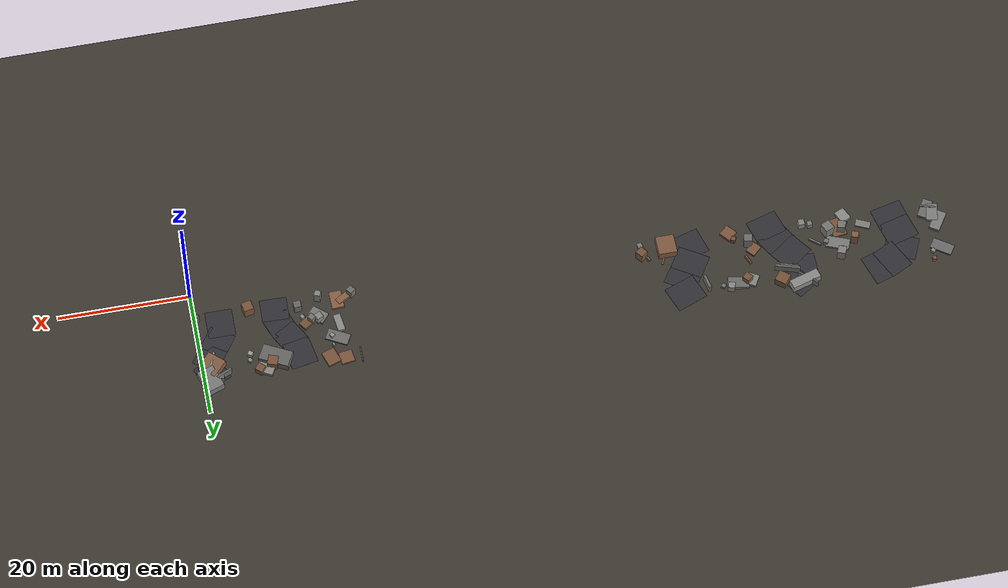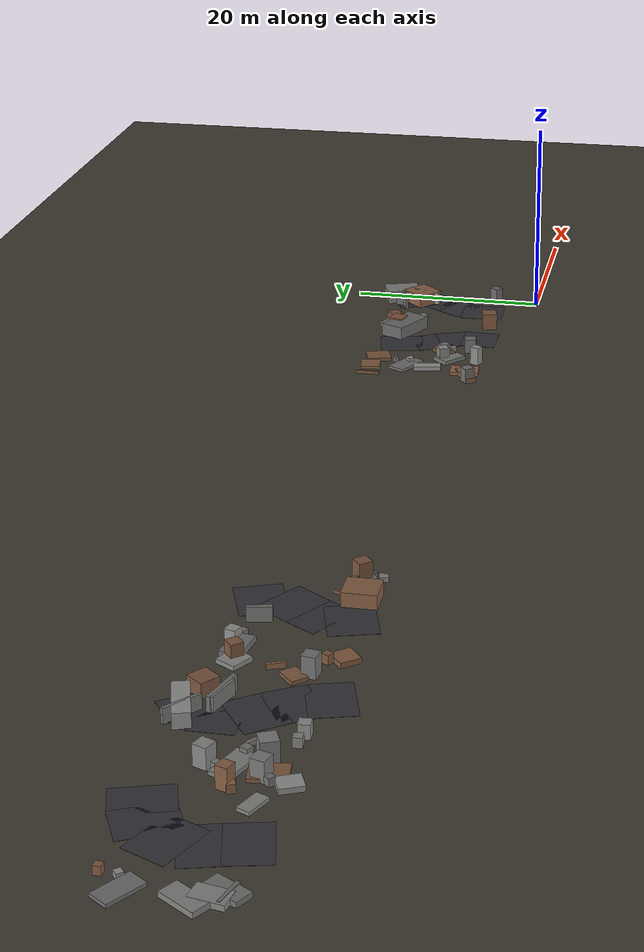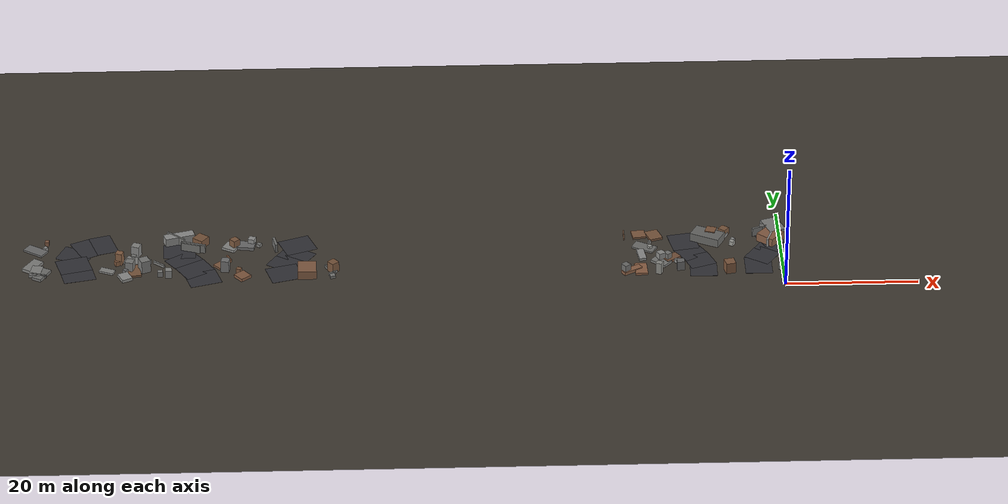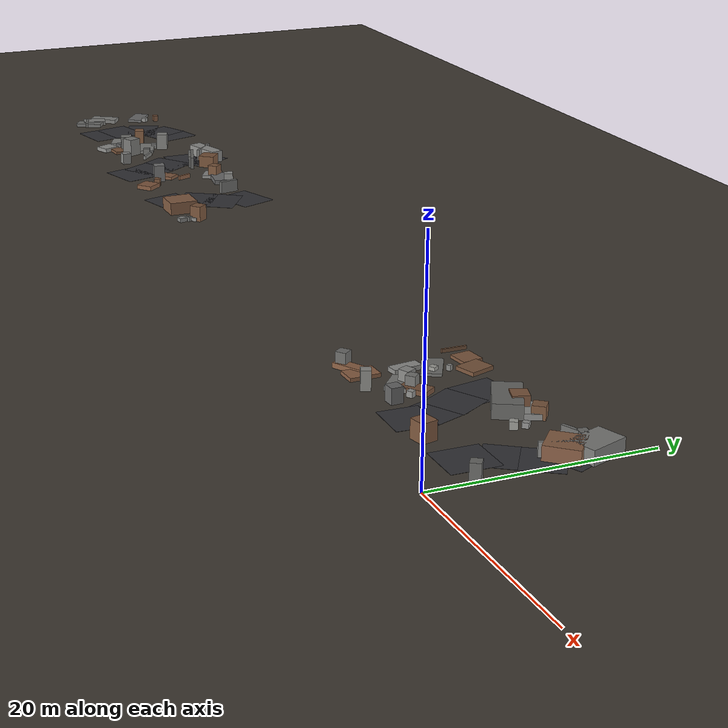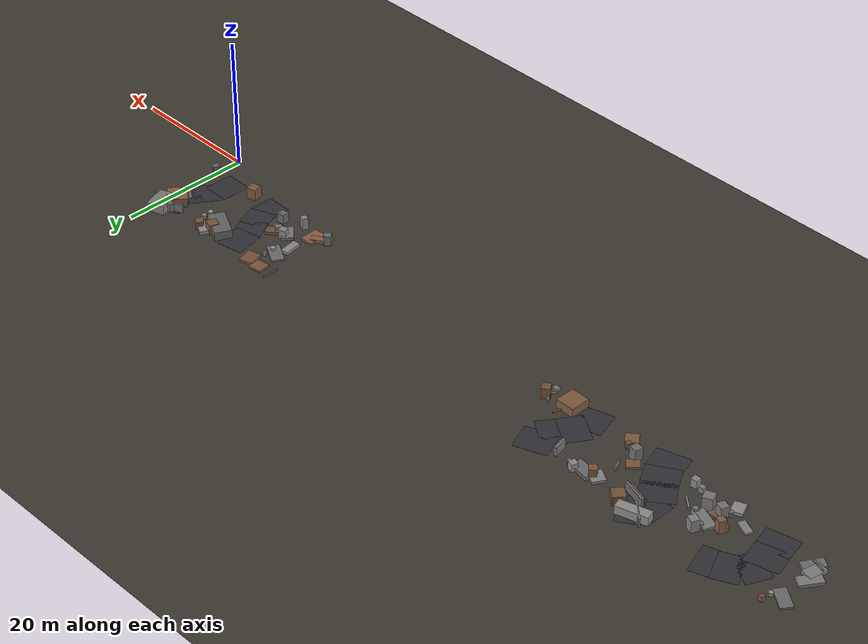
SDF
<sdf version="1.6">
 <world name="navitas_arena">
  <model name="ground_plane">
   <static>true</static>
   <link name="link">
    <collision name="collision">
     <geometry><plane><normal>0 0 1</normal><size>400 400</size></plane></geometry>
     <surface><friction><ode><mu>0.620</mu><mu2>0.620</mu2></ode></friction></surface>
    </collision>
    <visual name="visual">
     <cast_shadows>false</cast_shadows>
     <geometry><plane><normal>0 0 1</normal><size>400 400</size></plane></geometry>
     <material><ambient>0.250 0.230 0.200 1</ambient><diffuse>0.250 0.230 0.200 1</diffuse></material>
    </visual>
   </link>
  </model>
  <model name="road_kolay_1_15">
   <static>true</static>
   <pose>-106.991 6.137 0.040 0 0 1.798</pose>
   <link name="link">
    <collision name="col"><geometry><box><size>3.575 4.920 0.020</size></box></geometry></collision>
    <visual name="vis">
     <geometry><box><size>3.575 4.920 0.020</size></box></geometry>
     <material><ambient>0.20 0.20 0.22 1</ambient><diffuse>0.20 0.20 0.22 1</diffuse></material>
    </visual>
   </link>
  </model>
  <model name="road_kolay_1_16">
   <static>true</static>
   <pose>-107.691 8.910 0.040 0 0 1.836</pose>
   <link name="link">
    <collision name="col"><geometry><box><size>3.946 4.920 0.020</size></box></geometry></collision>
    <visual name="vis">
     <geometry><box><size>3.946 4.920 0.020</size></box></geometry>
     <material><ambient>0.20 0.20 0.22 1</ambient><diffuse>0.20 0.20 0.22 1</diffuse></material>
    </visual>
   </link>
  </model>
  <model name="road_kolay_1_17">
   <static>true</static>
   <pose>-107.504 11.690 0.040 0 0 1.150</pose>
   <link name="link">
    <collision name="col"><geometry><box><size>3.770 4.920 0.020</size></box></geometry></collision>
    <visual name="vis">
     <geometry><box><size>3.770 4.920 0.020</size></box></geometry>
     <material><ambient>0.20 0.20 0.22 1</ambient><diffuse>0.20 0.20 0.22 1</diffuse></material>
    </visual>
   </link>
  </model>
  <model name="road_kolay_1_18">
   <static>true</static>
   <pose>-105.667 13.615 0.040 0 0 0.457</pose>
   <link name="link">
    <collision name="col"><geometry><box><size>3.688 4.920 0.020</size></box></geometry></collision>
    <visual name="vis">
     <geometry><box><size>3.688 4.920 0.020</size></box></geometry>
     <material><ambient>0.20 0.20 0.22 1</ambient><diffuse>0.20 0.20 0.22 1</diffuse></material>
    </visual>
   </link>
  </model>
  <model name="road_kolay_1_19">
   <static>true</static>
   <pose>-103.256 14.594 0.040 0 0 0.304</pose>
   <link name="link">
    <collision name="col"><geometry><box><size>3.331 4.920 0.020</size></box></geometry></collision>
    <visual name="vis">
     <geometry><box><size>3.331 4.920 0.020</size></box></geometry>
     <material><ambient>0.20 0.20 0.22 1</ambient><diffuse>0.20 0.20 0.22 1</diffuse></material>
    </visual>
   </link>
  </model>
  <model name="road_kolay_2_10">
   <static>true</static>
   <pose>-88.036 4.600 0.040 0 0 1.866</pose>
   <link name="link">
    <collision name="col"><geometry><box><size>3.826 4.920 0.020</size></box></geometry></collision>
    <visual name="vis">
     <geometry><box><size>3.826 4.920 0.020</size></box></geometry>
     <material><ambient>0.20 0.20 0.22 1</ambient><diffuse>0.20 0.20 0.22 1</diffuse></material>
    </visual>
   </link>
  </model>
  <model name="road_kolay_2_11">
   <static>true</static>
   <pose>-89.189 7.213 0.040 0 0 2.111</pose>
   <link name="link">
    <collision name="col"><geometry><box><size>3.729 4.920 0.020</size></box></geometry></collision>
    <visual name="vis">
     <geometry><box><size>3.729 4.920 0.020</size></box></geometry>
     <material><ambient>0.20 0.20 0.22 1</ambient><diffuse>0.20 0.20 0.22 1</diffuse></material>
    </visual>
   </link>
  </model>
  <model name="road_kolay_2_12">
   <static>true</static>
   <pose>-90.787 9.639 0.040 0 0 2.193</pose>
   <link name="link">
    <collision name="col"><geometry><box><size>3.886 4.920 0.020</size></box></geometry></collision>
    <visual name="vis">
     <geometry><box><size>3.886 4.920 0.020</size></box></geometry>
     <material><ambient>0.20 0.20 0.22 1</ambient><diffuse>0.20 0.20 0.22 1</diffuse></material>
    </visual>
   </link>
  </model>
  <model name="road_kolay_2_13">
   <static>true</static>
   <pose>-91.660 12.317 0.040 0 0 1.573</pose>
   <link name="link">
    <collision name="col"><geometry><box><size>3.831 4.920 0.020</size></box></geometry></collision>
    <visual name="vis">
     <geometry><box><size>3.831 4.920 0.020</size></box></geometry>
     <material><ambient>0.20 0.20 0.22 1</ambient><diffuse>0.20 0.20 0.22 1</diffuse></material>
    </visual>
   </link>
  </model>
  <model name="road_kolay_2_14">
   <static>true</static>
   <pose>-90.635 14.469 0.040 0 0 0.589</pose>
   <link name="link">
    <collision name="col"><geometry><box><size>3.372 4.920 0.020</size></box></geometry></collision>
    <visual name="vis">
     <geometry><box><size>3.372 4.920 0.020</size></box></geometry>
     <material><ambient>0.20 0.20 0.22 1</ambient><diffuse>0.20 0.20 0.22 1</diffuse></material>
    </visual>
   </link>
  </model>
  <model name="road_kolay_3_12">
   <static>true</static>
   <pose>-75.717 5.598 0.040 0 0 1.853</pose>
   <link name="link">
    <collision name="col"><geometry><box><size>4.227 4.920 0.020</size></box></geometry></collision>
    <visual name="vis">
     <geometry><box><size>4.227 4.920 0.020</size></box></geometry>
     <material><ambient>0.20 0.20 0.22 1</ambient><diffuse>0.20 0.20 0.22 1</diffuse></material>
    </visual>
   </link>
  </model>
  <model name="road_kolay_3_13">
   <static>true</static>
   <pose>-75.413 8.426 0.040 0 0 1.013</pose>
   <link name="link">
    <collision name="col"><geometry><box><size>3.800 4.920 0.020</size></box></geometry></collision>
    <visual name="vis">
     <geometry><box><size>3.800 4.920 0.020</size></box></geometry>
     <material><ambient>0.20 0.20 0.22 1</ambient><diffuse>0.20 0.20 0.22 1</diffuse></material>
    </visual>
   </link>
  </model>
  <model name="road_kolay_3_14">
   <static>true</static>
   <pose>-73.864 10.817 0.040 0 0 0.979</pose>
   <link name="link">
    <collision name="col"><geometry><box><size>3.698 4.920 0.020</size></box></geometry></collision>
    <visual name="vis">
     <geometry><box><size>3.698 4.920 0.020</size></box></geometry>
     <material><ambient>0.20 0.20 0.22 1</ambient><diffuse>0.20 0.20 0.22 1</diffuse></material>
    </visual>
   </link>
  </model>
  <model name="road_kolay_3_15">
   <static>true</static>
   <pose>-73.666 13.503 0.040 0 0 1.936</pose>
   <link name="link">
    <collision name="col"><geometry><box><size>4.165 4.920 0.020</size></box></geometry></collision>
    <visual name="vis">
     <geometry><box><size>4.165 4.920 0.020</size></box></geometry>
     <material><ambient>0.20 0.20 0.22 1</ambient><diffuse>0.20 0.20 0.22 1</diffuse></material>
    </visual>
   </link>
  </model>
  <model name="blk_kolay_1_1_2">
   <static>true</static>
   <pose>-92.213 14.915 0.675 0 0 2.424</pose>
   <link name="link">
    <collision name="col"><geometry><box><size>3.410 0.265 1.350</size></box></geometry></collision>
    <visual name="vis">
     <geometry><box><size>3.410 0.265 1.350</size></box></geometry>
     <material><ambient>0.46 0.46 0.45 1</ambient><diffuse>0.46 0.46 0.45 1</diffuse></material>
    </visual>
   </link>
  </model>
  <model name="blk_kolay_1_1_6">
   <static>true</static>
   <pose>-91.713 15.094 0.675 0 0 0.289</pose>
   <link name="link">
    <collision name="col"><geometry><box><size>4.621 1.448 1.350</size></box></geometry></collision>
    <visual name="vis">
     <geometry><box><size>4.621 1.448 1.350</size></box></geometry>
     <material><ambient>0.56 0.56 0.55 1</ambient><diffuse>0.56 0.56 0.55 1</diffuse></material>
    </visual>
   </link>
  </model>
  <model name="blk_kolay_2_1_0">
   <static>true</static>
   <pose>-88.427 14.271 0.675 0 0 2.476</pose>
   <link name="link">
    <collision name="col"><geometry><box><size>1.804 1.804 1.350</size></box></geometry></collision>
    <visual name="vis">
     <geometry><box><size>1.804 1.804 1.350</size></box></geometry>
     <material><ambient>0.47 0.33 0.23 1</ambient><diffuse>0.47 0.33 0.23 1</diffuse></material>
    </visual>
   </link>
  </model>
  <model name="blk_kolay_2_1_1">
   <static>true</static>
   <pose>-89.940 12.392 0.675 0 0 2.824</pose>
   <link name="link">
    <collision name="col"><geometry><box><size>2.982 0.255 1.350</size></box></geometry></collision>
    <visual name="vis">
     <geometry><box><size>2.982 0.255 1.350</size></box></geometry>
     <material><ambient>0.44 0.44 0.43 1</ambient><diffuse>0.44 0.44 0.43 1</diffuse></material>
    </visual>
   </link>
  </model>
  <model name="blk_kolay_2_1_2">
   <static>true</static>
   <pose>-89.566 12.567 0.675 0 0 2.842</pose>
   <link name="link">
    <collision name="col"><geometry><box><size>3.827 0.365 1.350</size></box></geometry></collision>
    <visual name="vis">
     <geometry><box><size>3.827 0.365 1.350</size></box></geometry>
     <material><ambient>0.42 0.42 0.41 1</ambient><diffuse>0.42 0.42 0.41 1</diffuse></material>
    </visual>
   </link>
  </model>
  <model name="deb_kolay_7">
   <static>true</static>
   <pose>-113.314 7.004 0.243 0 0 1.379</pose>
   <link name="link">
    <collision name="col"><geometry><box><size>2.743 1.695 0.486</size></box></geometry></collision>
    <visual name="vis">
     <geometry><box><size>2.743 1.695 0.486</size></box></geometry>
     <material><ambient>0.51 0.51 0.50 1</ambient><diffuse>0.51 0.51 0.50 1</diffuse></material>
    </visual>
   </link>
  </model>
  <model name="deb_kolay_10">
   <static>true</static>
   <pose>-113.546 13.059 0.151 0 0 2.538</pose>
   <link name="link">
    <collision name="col"><geometry><box><size>3.365 1.752 0.302</size></box></geometry></collision>
    <visual name="vis">
     <geometry><box><size>3.365 1.752 0.302</size></box></geometry>
     <material><ambient>0.43 0.43 0.43 1</ambient><diffuse>0.43 0.43 0.43 1</diffuse></material>
    </visual>
   </link>
  </model>
  <model name="deb_kolay_14">
   <static>true</static>
   <pose>-113.951 8.148 0.214 0 0 0.482</pose>
   <link name="link">
    <collision name="col"><geometry><box><size>2.091 0.282 0.429</size></box></geometry></collision>
    <visual name="vis">
     <geometry><box><size>2.091 0.282 0.429</size></box></geometry>
     <material><ambient>0.53 0.53 0.52 1</ambient><diffuse>0.53 0.53 0.52 1</diffuse></material>
    </visual>
   </link>
  </model>
  <model name="deb_kolay_17">
   <static>true</static>
   <pose>-98.615 6.792 0.160 0 0 1.695</pose>
   <link name="link">
    <collision name="col"><geometry><box><size>3.017 2.163 0.320</size></box></geometry></collision>
    <visual name="vis">
     <geometry><box><size>3.017 2.163 0.320</size></box></geometry>
     <material><ambient>0.48 0.34 0.24 1</ambient><diffuse>0.48 0.34 0.24 1</diffuse></material>
    </visual>
   </link>
  </model>
  <model name="deb_kolay_18">
   <static>true</static>
   <pose>-82.577 6.045 0.425 0 0 2.654</pose>
   <link name="link">
    <collision name="col"><geometry><box><size>0.692 0.692 0.850</size></box></geometry></collision>
    <visual name="vis">
     <geometry><box><size>0.692 0.692 0.850</size></box></geometry>
     <material><ambient>0.47 0.33 0.23 1</ambient><diffuse>0.47 0.33 0.23 1</diffuse></material>
    </visual>
   </link>
  </model>
  <model name="deb_kolay_25">
   <static>true</static>
   <pose>-84.642 6.884 0.941 0 0 2.954</pose>
   <link name="link">
    <collision name="col"><geometry><box><size>1.219 1.219 1.882</size></box></geometry></collision>
    <visual name="vis">
     <geometry><box><size>1.219 1.219 1.882</size></box></geometry>
     <material><ambient>0.44 0.44 0.44 1</ambient><diffuse>0.44 0.44 0.44 1</diffuse></material>
    </visual>
   </link>
  </model>
  <model name="deb_kolay_26">
   <static>true</static>
   <pose>-102.561 6.957 0.153 0 0 2.722</pose>
   <link name="link">
    <collision name="col"><geometry><box><size>2.279 1.136 0.305</size></box></geometry></collision>
    <visual name="vis">
     <geometry><box><size>2.279 1.136 0.305</size></box></geometry>
     <material><ambient>0.51 0.51 0.50 1</ambient><diffuse>0.51 0.51 0.50 1</diffuse></material>
    </visual>
   </link>
  </model>
  <model name="deb_kolay_37">
   <static>true</static>
   <pose>-99.840 5.010 0.238 0 0 1.985</pose>
   <link name="link">
    <collision name="col"><geometry><box><size>1.971 1.662 0.475</size></box></geometry></collision>
    <visual name="vis">
     <geometry><box><size>1.971 1.662 0.475</size></box></geometry>
     <material><ambient>0.56 0.56 0.55 1</ambient><diffuse>0.56 0.56 0.55 1</diffuse></material>
    </visual>
   </link>
  </model>
  <model name="deb_kolay_38">
   <static>true</static>
   <pose>-113.891 8.563 0.242 0 0 0.990</pose>
   <link name="link">
    <collision name="col"><geometry><box><size>3.297 1.637 0.485</size></box></geometry></collision>
    <visual name="vis">
     <geometry><box><size>3.297 1.637 0.485</size></box></geometry>
     <material><ambient>0.50 0.50 0.49 1</ambient><diffuse>0.50 0.50 0.49 1</diffuse></material>
    </visual>
   </link>
  </model>
  <model name="deb_kolay_40">
   <static>true</static>
   <pose>-79.509 13.519 0.254 0 0 0.929</pose>
   <link name="link">
    <collision name="col"><geometry><box><size>0.619 0.619 0.508</size></box></geometry></collision>
    <visual name="vis">
     <geometry><box><size>0.619 0.619 0.508</size></box></geometry>
     <material><ambient>0.46 0.46 0.45 1</ambient><diffuse>0.46 0.46 0.45 1</diffuse></material>
    </visual>
   </link>
  </model>
  <model name="deb_kolay_41">
   <static>true</static>
   <pose>-80.600 14.034 0.599 0 0 1.234</pose>
   <link name="link">
    <collision name="col"><geometry><box><size>0.995 0.995 1.199</size></box></geometry></collision>
    <visual name="vis">
     <geometry><box><size>0.995 0.995 1.199</size></box></geometry>
     <material><ambient>0.56 0.56 0.55 1</ambient><diffuse>0.56 0.56 0.55 1</diffuse></material>
    </visual>
   </link>
  </model>
  <model name="deb_kolay_44">
   <static>true</static>
   <pose>-98.101 9.477 0.182 0 0 2.768</pose>
   <link name="link">
    <collision name="col"><geometry><box><size>3.544 1.843 0.364</size></box></geometry></collision>
    <visual name="vis">
     <geometry><box><size>3.544 1.843 0.364</size></box></geometry>
     <material><ambient>0.49 0.49 0.48 1</ambient><diffuse>0.49 0.49 0.48 1</diffuse></material>
    </visual>
   </link>
  </model>
  <model name="deb_kolay_45">
   <static>true</static>
   <pose>-112.463 6.183 0.221 0 0 1.046</pose>
   <link name="link">
    <collision name="col"><geometry><box><size>3.140 1.532 0.443</size></box></geometry></collision>
    <visual name="vis">
     <geometry><box><size>3.140 1.532 0.443</size></box></geometry>
     <material><ambient>0.44 0.44 0.43 1</ambient><diffuse>0.44 0.44 0.43 1</diffuse></material>
    </visual>
   </link>
  </model>
  <model name="deb_kolay_46">
   <static>true</static>
   <pose>-68.763 6.038 0.263 0 0 2.156</pose>
   <link name="link">
    <collision name="col"><geometry><box><size>2.590 0.268 0.525</size></box></geometry></collision>
    <visual name="vis">
     <geometry><box><size>2.590 0.268 0.525</size></box></geometry>
     <material><ambient>0.42 0.42 0.41 1</ambient><diffuse>0.42 0.42 0.41 1</diffuse></material>
    </visual>
   </link>
  </model>
  <model name="deb_kolay_66">
   <static>true</static>
   <pose>-71.697 6.891 0.123 0 0 1.167</pose>
   <link name="link">
    <collision name="col"><geometry><box><size>2.437 0.231 0.245</size></box></geometry></collision>
    <visual name="vis">
     <geometry><box><size>2.437 0.231 0.245</size></box></geometry>
     <material><ambient>0.50 0.35 0.25 1</ambient><diffuse>0.50 0.35 0.25 1</diffuse></material>
    </visual>
   </link>
  </model>
  <model name="deb_kolay_67">
   <static>true</static>
   <pose>-99.098 7.193 0.897 0 0 2.839</pose>
   <link name="link">
    <collision name="col"><geometry><box><size>1.222 1.222 1.793</size></box></geometry></collision>
    <visual name="vis">
     <geometry><box><size>1.222 1.222 1.793</size></box></geometry>
     <material><ambient>0.47 0.47 0.46 1</ambient><diffuse>0.47 0.47 0.46 1</diffuse></material>
    </visual>
   </link>
  </model>
  <model name="deb_kolay_73">
   <static>true</static>
   <pose>-93.256 5.413 0.629 0 0 0.041</pose>
   <link name="link">
    <collision name="col"><geometry><box><size>0.967 0.967 1.257</size></box></geometry></collision>
    <visual name="vis">
     <geometry><box><size>0.967 0.967 1.257</size></box></geometry>
     <material><ambient>0.53 0.53 0.52 1</ambient><diffuse>0.53 0.53 0.52 1</diffuse></material>
    </visual>
   </link>
  </model>
  <model name="deb_kolay_77">
   <static>true</static>
   <pose>-94.723 8.597 0.214 0 0 2.456</pose>
   <link name="link">
    <collision name="col"><geometry><box><size>2.092 0.277 0.428</size></box></geometry></collision>
    <visual name="vis">
     <geometry><box><size>2.092 0.277 0.428</size></box></geometry>
     <material><ambient>0.48 0.48 0.47 1</ambient><diffuse>0.48 0.48 0.47 1</diffuse></material>
    </visual>
   </link>
  </model>
  <model name="deb_kolay_78">
   <static>true</static>
   <pose>-85.300 8.099 0.170 0 0 0.738</pose>
   <link name="link">
    <collision name="col"><geometry><box><size>1.910 1.496 0.341</size></box></geometry></collision>
    <visual name="vis">
     <geometry><box><size>1.910 1.496 0.341</size></box></geometry>
     <material><ambient>0.50 0.35 0.25 1</ambient><diffuse>0.50 0.35 0.25 1</diffuse></material>
    </visual>
   </link>
  </model>
  <model name="deb_kolay_88">
   <static>true</static>
   <pose>-111.864 14.915 0.367 0 0 3.038</pose>
   <link name="link">
    <collision name="col"><geometry><box><size>0.597 0.597 0.733</size></box></geometry></collision>
    <visual name="vis">
     <geometry><box><size>0.597 0.597 0.733</size></box></geometry>
     <material><ambient>0.49 0.34 0.25 1</ambient><diffuse>0.49 0.34 0.25 1</diffuse></material>
    </visual>
   </link>
  </model>
  <model name="deb_kolay_91">
   <static>true</static>
   <pose>-94.531 5.620 0.431 0 0 0.081</pose>
   <link name="link">
    <collision name="col"><geometry><box><size>0.751 0.751 0.863</size></box></geometry></collision>
    <visual name="vis">
     <geometry><box><size>0.751 0.751 0.863</size></box></geometry>
     <material><ambient>0.49 0.49 0.48 1</ambient><diffuse>0.49 0.49 0.48 1</diffuse></material>
    </visual>
   </link>
  </model>
  <model name="deb_kolay_93">
   <static>true</static>
   <pose>-96.911 7.226 1.000 0 0 0.416</pose>
   <link name="link">
    <collision name="col"><geometry><box><size>1.458 1.458 2.001</size></box></geometry></collision>
    <visual name="vis">
     <geometry><box><size>1.458 1.458 2.001</size></box></geometry>
     <material><ambient>0.47 0.47 0.46 1</ambient><diffuse>0.47 0.47 0.46 1</diffuse></material>
    </visual>
   </link>
  </model>
  <model name="deb_kolay_99">
   <static>true</static>
   <pose>-99.795 6.444 0.358 0 0 0.860</pose>
   <link name="link">
    <collision name="col"><geometry><box><size>0.614 0.614 0.716</size></box></geometry></collision>
    <visual name="vis">
     <geometry><box><size>0.614 0.614 0.716</size></box></geometry>
     <material><ambient>0.43 0.43 0.43 1</ambient><diffuse>0.43 0.43 0.43 1</diffuse></material>
    </visual>
   </link>
  </model>
  <model name="deb_kolay_109">
   <static>true</static>
   <pose>-68.354 5.291 0.204 0 0 0.637</pose>
   <link name="link">
    <collision name="col"><geometry><box><size>1.551 0.190 0.407</size></box></geometry></collision>
    <visual name="vis">
     <geometry><box><size>1.551 0.190 0.407</size></box></geometry>
     <material><ambient>0.53 0.53 0.52 1</ambient><diffuse>0.53 0.53 0.52 1</diffuse></material>
    </visual>
   </link>
  </model>
  <model name="deb_kolay_113">
   <static>true</static>
   <pose>-98.566 10.568 0.325 0 0 2.682</pose>
   <link name="link">
    <collision name="col"><geometry><box><size>0.607 0.607 0.650</size></box></geometry></collision>
    <visual name="vis">
     <geometry><box><size>0.607 0.607 0.650</size></box></geometry>
     <material><ambient>0.48 0.48 0.47 1</ambient><diffuse>0.48 0.48 0.47 1</diffuse></material>
    </visual>
   </link>
  </model>
  <model name="deb_kolay_123">
   <static>true</static>
   <pose>-82.059 4.766 0.240 0 0 2.258</pose>
   <link name="link">
    <collision name="col"><geometry><box><size>1.849 1.866 0.480</size></box></geometry></collision>
    <visual name="vis">
     <geometry><box><size>1.849 1.866 0.480</size></box></geometry>
     <material><ambient>0.51 0.35 0.25 1</ambient><diffuse>0.51 0.35 0.25 1</diffuse></material>
    </visual>
   </link>
  </model>
  <model name="deb_kolay_129">
   <static>true</static>
   <pose>-68.448 4.347 0.221 0 0 0.182</pose>
   <link name="link">
    <collision name="col"><geometry><box><size>0.771 0.771 0.442</size></box></geometry></collision>
    <visual name="vis">
     <geometry><box><size>0.771 0.771 0.442</size></box></geometry>
     <material><ambient>0.49 0.49 0.48 1</ambient><diffuse>0.49 0.49 0.48 1</diffuse></material>
    </visual>
   </link>
  </model>
  <model name="deb_kolay_130">
   <static>true</static>
   <pose>-101.071 8.920 0.368 0 0 0.410</pose>
   <link name="link">
    <collision name="col"><geometry><box><size>0.712 0.712 0.736</size></box></geometry></collision>
    <visual name="vis">
     <geometry><box><size>0.712 0.712 0.736</size></box></geometry>
     <material><ambient>0.53 0.37 0.26 1</ambient><diffuse>0.53 0.37 0.26 1</diffuse></material>
    </visual>
   </link>
  </model>
  <model name="deb_kolay_137">
   <static>true</static>
   <pose>-98.194 11.546 0.926 0 0 1.177</pose>
   <link name="link">
    <collision name="col"><geometry><box><size>1.229 1.229 1.853</size></box></geometry></collision>
    <visual name="vis">
     <geometry><box><size>1.229 1.229 1.853</size></box></geometry>
     <material><ambient>0.52 0.52 0.51 1</ambient><diffuse>0.52 0.52 0.51 1</diffuse></material>
    </visual>
   </link>
  </model>
  <model name="deb_kolay_138">
   <static>true</static>
   <pose>-112.042 13.504 0.244 0 0 2.260</pose>
   <link name="link">
    <collision name="col"><geometry><box><size>0.576 0.576 0.488</size></box></geometry></collision>
    <visual name="vis">
     <geometry><box><size>0.576 0.576 0.488</size></box></geometry>
     <material><ambient>0.56 0.56 0.55 1</ambient><diffuse>0.56 0.56 0.55 1</diffuse></material>
    </visual>
   </link>
  </model>
  <model name="deb_kolay_139">
   <static>true</static>
   <pose>-83.240 13.256 0.769 0 0 2.269</pose>
   <link name="link">
    <collision name="col"><geometry><box><size>1.132 1.132 1.539</size></box></geometry></collision>
    <visual name="vis">
     <geometry><box><size>1.132 1.132 1.539</size></box></geometry>
     <material><ambient>0.48 0.34 0.24 1</ambient><diffuse>0.48 0.34 0.24 1</diffuse></material>
    </visual>
   </link>
  </model>
  <model name="deb_kolay_140">
   <static>true</static>
   <pose>-68.319 6.161 0.830 0 0 2.255</pose>
   <link name="link">
    <collision name="col"><geometry><box><size>1.266 1.266 1.659</size></box></geometry></collision>
    <visual name="vis">
     <geometry><box><size>1.266 1.266 1.659</size></box></geometry>
     <material><ambient>0.47 0.33 0.23 1</ambient><diffuse>0.47 0.33 0.23 1</diffuse></material>
    </visual>
   </link>
  </model>
  <model name="deb_kolay_144">
   <static>true</static>
   <pose>-96.370 8.973 0.355 0 0 2.725</pose>
   <link name="link">
    <collision name="col"><geometry><box><size>0.733 0.733 0.709</size></box></geometry></collision>
    <visual name="vis">
     <geometry><box><size>0.733 0.733 0.709</size></box></geometry>
     <material><ambient>0.45 0.45 0.44 1</ambient><diffuse>0.45 0.45 0.44 1</diffuse></material>
    </visual>
   </link>
  </model>
  <model name="deb_kolay_147">
   <static>true</static>
   <pose>-81.794 13.389 0.258 0 0 2.990</pose>
   <link name="link">
    <collision name="col"><geometry><box><size>3.206 1.804 0.516</size></box></geometry></collision>
    <visual name="vis">
     <geometry><box><size>3.206 1.804 0.516</size></box></geometry>
     <material><ambient>0.43 0.43 0.43 1</ambient><diffuse>0.43 0.43 0.43 1</diffuse></material>
    </visual>
   </link>
  </model>
  <model name="deb_kolay_164">
   <static>true</static>
   <pose>-100.697 9.376 0.970 0 0 2.787</pose>
   <link name="link">
    <collision name="col"><geometry><box><size>1.028 1.028 1.940</size></box></geometry></collision>
    <visual name="vis">
     <geometry><box><size>1.028 1.028 1.940</size></box></geometry>
     <material><ambient>0.52 0.37 0.26 1</ambient><diffuse>0.52 0.37 0.26 1</diffuse></material>
    </visual>
   </link>
  </model>
  <model name="deb_kolay_167">
   <static>true</static>
   <pose>-112.937 5.947 0.268 0 0 2.839</pose>
   <link name="link">
    <collision name="col"><geometry><box><size>2.429 0.284 0.536</size></box></geometry></collision>
    <visual name="vis">
     <geometry><box><size>2.429 0.284 0.536</size></box></geometry>
     <material><ambient>0.41 0.41 0.40 1</ambient><diffuse>0.41 0.41 0.40 1</diffuse></material>
    </visual>
   </link>
  </model>
  <model name="deb_kolay_172">
   <static>true</static>
   <pose>-84.110 9.752 0.241 0 0 1.960</pose>
   <link name="link">
    <collision name="col"><geometry><box><size>1.574 0.236 0.482</size></box></geometry></collision>
    <visual name="vis">
     <geometry><box><size>1.574 0.236 0.482</size></box></geometry>
     <material><ambient>0.55 0.38 0.27 1</ambient><diffuse>0.55 0.38 0.27 1</diffuse></material>
    </visual>
   </link>
  </model>
  <model name="deb_kolay_174">
   <static>true</static>
   <pose>-83.801 13.127 0.202 0 0 2.611</pose>
   <link name="link">
    <collision name="col"><geometry><box><size>2.108 1.948 0.403</size></box></geometry></collision>
    <visual name="vis">
     <geometry><box><size>2.108 1.948 0.403</size></box></geometry>
     <material><ambient>0.53 0.53 0.52 1</ambient><diffuse>0.53 0.53 0.52 1</diffuse></material>
    </visual>
   </link>
  </model>
  <model name="chic_kolay_5">
   <static>true</static>
   <pose>-72.289 5.411 0.675 0 0 1.572</pose>
   <link name="link">
    <collision name="col"><geometry><box><size>3.036 2.843 1.350</size></box></geometry></collision>
    <visual name="vis">
     <geometry><box><size>3.036 2.843 1.350</size></box></geometry>
     <material><ambient>0.51 0.36 0.26 1</ambient><diffuse>0.51 0.36 0.26 1</diffuse></material>
    </visual>
   </link>
  </model>
  <model name="chic_kolay_6">
   <static>true</static>
   <pose>-77.095 12.791 0.675 0 0 1.766</pose>
   <link name="link">
    <collision name="col"><geometry><box><size>2.152 0.413 1.350</size></box></geometry></collision>
    <visual name="vis">
     <geometry><box><size>2.152 0.413 1.350</size></box></geometry>
     <material><ambient>0.44 0.44 0.43 1</ambient><diffuse>0.44 0.44 0.43 1</diffuse></material>
    </visual>
   </link>
  </model>
  <model name="road_orta_1_15">
   <static>true</static>
   <pose>-12.158 4.600 0.040 0 0 1.552</pose>
   <link name="link">
    <collision name="col"><geometry><box><size>3.701 4.100 0.020</size></box></geometry></collision>
    <visual name="vis">
     <geometry><box><size>3.701 4.100 0.020</size></box></geometry>
     <material><ambient>0.20 0.20 0.22 1</ambient><diffuse>0.20 0.20 0.22 1</diffuse></material>
    </visual>
   </link>
  </model>
  <model name="road_orta_1_16">
   <static>true</static>
   <pose>-12.593 7.213 0.040 0 0 1.934</pose>
   <link name="link">
    <collision name="col"><geometry><box><size>3.496 4.100 0.020</size></box></geometry></collision>
    <visual name="vis">
     <geometry><box><size>3.496 4.100 0.020</size></box></geometry>
     <material><ambient>0.20 0.20 0.22 1</ambient><diffuse>0.20 0.20 0.22 1</diffuse></material>
    </visual>
   </link>
  </model>
  <model name="road_orta_1_17">
   <static>true</static>
   <pose>-13.761 9.639 0.040 0 0 2.099</pose>
   <link name="link">
    <collision name="col"><geometry><box><size>3.708 4.100 0.020</size></box></geometry></collision>
    <visual name="vis">
     <geometry><box><size>3.708 4.100 0.020</size></box></geometry>
     <material><ambient>0.20 0.20 0.22 1</ambient><diffuse>0.20 0.20 0.22 1</diffuse></material>
    </visual>
   </link>
  </model>
  <model name="road_orta_1_18">
   <static>true</static>
   <pose>-14.793 12.588 0.040 0 0 1.756</pose>
   <link name="link">
    <collision name="col"><geometry><box><size>4.433 4.100 0.020</size></box></geometry></collision>
    <visual name="vis">
     <geometry><box><size>4.433 4.100 0.020</size></box></geometry>
     <material><ambient>0.20 0.20 0.22 1</ambient><diffuse>0.20 0.20 0.22 1</diffuse></material>
    </visual>
   </link>
  </model>
  <model name="road_orta_2_11">
   <static>true</static>
   <pose>-3.770 5.431 0.040 0 0 1.569</pose>
   <link name="link">
    <collision name="col"><geometry><box><size>4.429 4.100 0.020</size></box></geometry></collision>
    <visual name="vis">
     <geometry><box><size>4.429 4.100 0.020</size></box></geometry>
     <material><ambient>0.20 0.20 0.22 1</ambient><diffuse>0.20 0.20 0.22 1</diffuse></material>
    </visual>
   </link>
  </model>
  <model name="road_orta_2_12">
   <static>true</static>
   <pose>-2.936 8.426 0.040 0 0 0.977</pose>
   <link name="link">
    <collision name="col"><geometry><box><size>3.869 4.100 0.020</size></box></geometry></collision>
    <visual name="vis">
     <geometry><box><size>3.869 4.100 0.020</size></box></geometry>
     <material><ambient>0.20 0.20 0.22 1</ambient><diffuse>0.20 0.20 0.22 1</diffuse></material>
    </visual>
   </link>
  </model>
  <model name="road_orta_2_13">
   <static>true</static>
   <pose>-1.358 10.817 0.040 0 0 0.999</pose>
   <link name="link">
    <collision name="col"><geometry><box><size>3.661 4.100 0.020</size></box></geometry></collision>
    <visual name="vis">
     <geometry><box><size>3.661 4.100 0.020</size></box></geometry>
     <material><ambient>0.20 0.20 0.22 1</ambient><diffuse>0.20 0.20 0.22 1</diffuse></material>
    </visual>
   </link>
  </model>
  <model name="road_orta_2_14">
   <static>true</static>
   <pose>-1.305 13.503 0.040 0 0 1.998</pose>
   <link name="link">
    <collision name="col"><geometry><box><size>4.252 4.100 0.020</size></box></geometry></collision>
    <visual name="vis">
     <geometry><box><size>4.252 4.100 0.020</size></box></geometry>
     <material><ambient>0.20 0.20 0.22 1</ambient><diffuse>0.20 0.20 0.22 1</diffuse></material>
    </visual>
   </link>
  </model>
  <model name="blk_orta_2_2_0">
   <static>true</static>
   <pose>-2.533 14.871 0.675 0 0 1.470</pose>
   <link name="link">
    <collision name="col"><geometry><box><size>0.843 0.843 1.350</size></box></geometry></collision>
    <visual name="vis">
     <geometry><box><size>0.843 0.843 1.350</size></box></geometry>
     <material><ambient>0.42 0.42 0.41 1</ambient><diffuse>0.42 0.42 0.41 1</diffuse></material>
    </visual>
   </link>
  </model>
  <model name="blk_orta_2_2_1">
   <static>true</static>
   <pose>-3.020 14.416 0.675 0 0 0.416</pose>
   <link name="link">
    <collision name="col"><geometry><box><size>2.462 0.315 1.350</size></box></geometry></collision>
    <visual name="vis">
     <geometry><box><size>2.462 0.315 1.350</size></box></geometry>
     <material><ambient>0.44 0.44 0.43 1</ambient><diffuse>0.44 0.44 0.43 1</diffuse></material>
    </visual>
   </link>
  </model>
  <model name="blk_orta_2_2_2">
   <static>true</static>
   <pose>-1.520 12.147 0.675 0 0 1.230</pose>
   <link name="link">
    <collision name="col"><geometry><box><size>3.192 0.291 1.350</size></box></geometry></collision>
    <visual name="vis">
     <geometry><box><size>3.192 0.291 1.350</size></box></geometry>
     <material><ambient>0.57 0.57 0.56 1</ambient><diffuse>0.57 0.57 0.56 1</diffuse></material>
    </visual>
   </link>
  </model>
  <model name="blk_orta_2_2_3">
   <static>true</static>
   <pose>-1.424 12.666 0.675 0 0 2.413</pose>
   <link name="link">
    <collision name="col"><geometry><box><size>2.968 3.037 1.350</size></box></geometry></collision>
    <visual name="vis">
     <geometry><box><size>2.968 3.037 1.350</size></box></geometry>
     <material><ambient>0.53 0.37 0.27 1</ambient><diffuse>0.53 0.37 0.27 1</diffuse></material>
    </visual>
   </link>
  </model>
  <model name="blk_orta_2_2_5">
   <static>true</static>
   <pose>-0.875 15.025 0.675 0 0 1.912</pose>
   <link name="link">
    <collision name="col"><geometry><box><size>3.686 2.650 1.350</size></box></geometry></collision>
    <visual name="vis">
     <geometry><box><size>3.686 2.650 1.350</size></box></geometry>
     <material><ambient>0.49 0.49 0.48 1</ambient><diffuse>0.49 0.49 0.48 1</diffuse></material>
    </visual>
   </link>
  </model>
  <model name="deb_orta_37">
   <static>true</static>
   <pose>-18.502 7.546 0.708 0 0 2.026</pose>
   <link name="link">
    <collision name="col"><geometry><box><size>1.052 1.052 1.417</size></box></geometry></collision>
    <visual name="vis">
     <geometry><box><size>1.052 1.052 1.417</size></box></geometry>
     <material><ambient>0.54 0.54 0.53 1</ambient><diffuse>0.54 0.54 0.53 1</diffuse></material>
    </visual>
   </link>
  </model>
  <model name="deb_orta_38">
   <static>true</static>
   <pose>-7.215 12.558 0.247 0 0 2.367</pose>
   <link name="link">
    <collision name="col"><geometry><box><size>0.575 0.575 0.494</size></box></geometry></collision>
    <visual name="vis">
     <geometry><box><size>0.575 0.575 0.494</size></box></geometry>
     <material><ambient>0.56 0.56 0.55 1</ambient><diffuse>0.56 0.56 0.55 1</diffuse></material>
    </visual>
   </link>
  </model>
  <model name="deb_orta_58">
   <static>true</static>
   <pose>-23.974 4.147 0.763 0 0 2.247</pose>
   <link name="link">
    <collision name="col"><geometry><box><size>1.023 1.023 1.525</size></box></geometry></collision>
    <visual name="vis">
     <geometry><box><size>1.023 1.023 1.525</size></box></geometry>
     <material><ambient>0.43 0.43 0.42 1</ambient><diffuse>0.43 0.43 0.42 1</diffuse></material>
    </visual>
   </link>
  </model>
  <model name="deb_orta_61">
   <static>true</static>
   <pose>-20.807 11.028 0.137 0 0 2.638</pose>
   <link name="link">
    <collision name="col"><geometry><box><size>3.499 1.843 0.274</size></box></geometry></collision>
    <visual name="vis">
     <geometry><box><size>3.499 1.843 0.274</size></box></geometry>
     <material><ambient>0.44 0.44 0.43 1</ambient><diffuse>0.44 0.44 0.43 1</diffuse></material>
    </visual>
   </link>
  </model>
  <model name="deb_orta_78">
   <static>true</static>
   <pose>-10.496 13.730 0.749 0 0 2.828</pose>
   <link name="link">
    <collision name="col"><geometry><box><size>1.520 1.520 1.499</size></box></geometry></collision>
    <visual name="vis">
     <geometry><box><size>1.520 1.520 1.499</size></box></geometry>
     <material><ambient>0.49 0.34 0.24 1</ambient><diffuse>0.49 0.34 0.24 1</diffuse></material>
    </visual>
   </link>
  </model>
  <model name="deb_orta_87">
   <static>true</static>
   <pose>-16.850 7.673 0.230 0 0 0.628</pose>
   <link name="link">
    <collision name="col"><geometry><box><size>2.575 1.414 0.460</size></box></geometry></collision>
    <visual name="vis">
     <geometry><box><size>2.575 1.414 0.460</size></box></geometry>
     <material><ambient>0.46 0.32 0.23 1</ambient><diffuse>0.46 0.32 0.23 1</diffuse></material>
    </visual>
   </link>
  </model>
  <model name="deb_orta_93">
   <static>true</static>
   <pose>-23.062 4.478 0.250 0 0 0.536</pose>
   <link name="link">
    <collision name="col"><geometry><box><size>3.168 1.019 0.499</size></box></geometry></collision>
    <visual name="vis">
     <geometry><box><size>3.168 1.019 0.499</size></box></geometry>
     <material><ambient>0.55 0.38 0.27 1</ambient><diffuse>0.55 0.38 0.27 1</diffuse></material>
    </visual>
   </link>
  </model>
  <model name="deb_orta_117">
   <static>true</static>
   <pose>-21.649 4.786 0.176 0 0 1.613</pose>
   <link name="link">
    <collision name="col"><geometry><box><size>2.877 1.873 0.352</size></box></geometry></collision>
    <visual name="vis">
     <geometry><box><size>2.877 1.873 0.352</size></box></geometry>
     <material><ambient>0.55 0.38 0.27 1</ambient><diffuse>0.55 0.38 0.27 1</diffuse></material>
    </visual>
   </link>
  </model>
  <model name="deb_orta_118">
   <static>true</static>
   <pose>-18.910 3.986 0.922 0 0 2.749</pose>
   <link name="link">
    <collision name="col"><geometry><box><size>0.902 0.902 1.844</size></box></geometry></collision>
    <visual name="vis">
     <geometry><box><size>0.902 0.902 1.844</size></box></geometry>
     <material><ambient>0.54 0.54 0.52 1</ambient><diffuse>0.54 0.54 0.52 1</diffuse></material>
    </visual>
   </link>
  </model>
  <model name="deb_orta_123">
   <static>true</static>
   <pose>-15.625 5.064 0.736 0 0 0.074</pose>
   <link name="link">
    <collision name="col"><geometry><box><size>1.129 1.129 1.472</size></box></geometry></collision>
    <visual name="vis">
     <geometry><box><size>1.129 1.129 1.472</size></box></geometry>
     <material><ambient>0.41 0.41 0.41 1</ambient><diffuse>0.41 0.41 0.41 1</diffuse></material>
    </visual>
   </link>
  </model>
  <model name="deb_orta_127">
   <static>true</static>
   <pose>-8.215 4.124 0.870 0 0 1.796</pose>
   <link name="link">
    <collision name="col"><geometry><box><size>1.515 1.515 1.740</size></box></geometry></collision>
    <visual name="vis">
     <geometry><box><size>1.515 1.515 1.740</size></box></geometry>
     <material><ambient>0.49 0.34 0.24 1</ambient><diffuse>0.49 0.34 0.24 1</diffuse></material>
    </visual>
   </link>
  </model>
  <model name="deb_orta_128">
   <static>true</static>
   <pose>-0.166 4.451 0.852 0 0 0.967</pose>
   <link name="link">
    <collision name="col"><geometry><box><size>0.932 0.932 1.704</size></box></geometry></collision>
    <visual name="vis">
     <geometry><box><size>0.932 0.932 1.704</size></box></geometry>
     <material><ambient>0.41 0.41 0.40 1</ambient><diffuse>0.41 0.41 0.40 1</diffuse></material>
    </visual>
   </link>
  </model>
  <model name="deb_orta_137">
   <static>true</static>
   <pose>-23.777 14.576 0.171 0 0 1.575</pose>
   <link name="link">
    <collision name="col"><geometry><box><size>2.432 0.168 0.343</size></box></geometry></collision>
    <visual name="vis">
     <geometry><box><size>2.432 0.168 0.343</size></box></geometry>
     <material><ambient>0.45 0.32 0.23 1</ambient><diffuse>0.45 0.32 0.23 1</diffuse></material>
    </visual>
   </link>
  </model>
  <model name="deb_orta_139">
   <static>true</static>
   <pose>-21.378 8.751 0.221 0 0 1.704</pose>
   <link name="link">
    <collision name="col"><geometry><box><size>2.751 1.113 0.443</size></box></geometry></collision>
    <visual name="vis">
     <geometry><box><size>2.751 1.113 0.443</size></box></geometry>
     <material><ambient>0.56 0.56 0.55 1</ambient><diffuse>0.56 0.56 0.55 1</diffuse></material>
    </visual>
   </link>
  </model>
  <model name="deb_orta_143">
   <static>true</static>
   <pose>-19.230 14.264 0.185 0 0 1.896</pose>
   <link name="link">
    <collision name="col"><geometry><box><size>2.461 2.050 0.371</size></box></geometry></collision>
    <visual name="vis">
     <geometry><box><size>2.461 2.050 0.371</size></box></geometry>
     <material><ambient>0.48 0.34 0.24 1</ambient><diffuse>0.48 0.34 0.24 1</diffuse></material>
    </visual>
   </link>
  </model>
  <model name="deb_orta_150">
   <static>true</static>
   <pose>-7.399 11.544 0.351 0 0 1.052</pose>
   <link name="link">
    <collision name="col"><geometry><box><size>0.694 0.694 0.701</size></box></geometry></collision>
    <visual name="vis">
     <geometry><box><size>0.694 0.694 0.701</size></box></geometry>
     <material><ambient>0.62 0.62 0.60 1</ambient><diffuse>0.62 0.62 0.60 1</diffuse></material>
    </visual>
   </link>
  </model>
  <model name="deb_orta_155">
   <static>true</static>
   <pose>-21.508 14.656 0.157 0 0 0.135</pose>
   <link name="link">
    <collision name="col"><geometry><box><size>2.048 1.955 0.314</size></box></geometry></collision>
    <visual name="vis">
     <geometry><box><size>2.048 1.955 0.314</size></box></geometry>
     <material><ambient>0.50 0.35 0.25 1</ambient><diffuse>0.50 0.35 0.25 1</diffuse></material>
    </visual>
   </link>
  </model>
  <model name="deb_orta_164">
   <static>true</static>
   <pose>-19.990 10.731 0.305 0 0 0.583</pose>
   <link name="link">
    <collision name="col"><geometry><box><size>0.618 0.618 0.610</size></box></geometry></collision>
    <visual name="vis">
     <geometry><box><size>0.618 0.618 0.610</size></box></geometry>
     <material><ambient>0.62 0.62 0.60 1</ambient><diffuse>0.62 0.62 0.60 1</diffuse></material>
    </visual>
   </link>
  </model>
  <model name="deb_orta_172">
   <static>true</static>
   <pose>-8.492 14.469 0.604 0 0 2.468</pose>
   <link name="link">
    <collision name="col"><geometry><box><size>1.197 1.197 1.207</size></box></geometry></collision>
    <visual name="vis">
     <geometry><box><size>1.197 1.197 1.207</size></box></geometry>
     <material><ambient>0.48 0.34 0.24 1</ambient><diffuse>0.48 0.34 0.24 1</diffuse></material>
    </visual>
   </link>
  </model>
  <model name="deb_orta_179">
   <static>true</static>
   <pose>-9.371 14.192 0.268 0 0 2.665</pose>
   <link name="link">
    <collision name="col"><geometry><box><size>2.609 2.126 0.536</size></box></geometry></collision>
    <visual name="vis">
     <geometry><box><size>2.609 2.126 0.536</size></box></geometry>
     <material><ambient>0.55 0.55 0.54 1</ambient><diffuse>0.55 0.55 0.54 1</diffuse></material>
    </visual>
   </link>
  </model>
  <model name="deb_orta_200">
   <static>true</static>
   <pose>-16.088 6.807 0.278 0 0 0.553</pose>
   <link name="link">
    <collision name="col"><geometry><box><size>0.568 0.568 0.557</size></box></geometry></collision>
    <visual name="vis">
     <geometry><box><size>0.568 0.568 0.557</size></box></geometry>
     <material><ambient>0.56 0.56 0.55 1</ambient><diffuse>0.56 0.56 0.55 1</diffuse></material>
    </visual>
   </link>
  </model>
  <model name="deb_orta_201">
   <static>true</static>
   <pose>-19.975 12.252 0.256 0 0 0.613</pose>
   <link name="link">
    <collision name="col"><geometry><box><size>0.404 0.404 0.511</size></box></geometry></collision>
    <visual name="vis">
     <geometry><box><size>0.404 0.404 0.511</size></box></geometry>
     <material><ambient>0.52 0.52 0.51 1</ambient><diffuse>0.52 0.52 0.51 1</diffuse></material>
    </visual>
   </link>
  </model>
  <model name="deb_orta_217">
   <static>true</static>
   <pose>-18.461 6.846 0.205 0 0 2.434</pose>
   <link name="link">
    <collision name="col"><geometry><box><size>2.690 1.883 0.410</size></box></geometry></collision>
    <visual name="vis">
     <geometry><box><size>2.690 1.883 0.410</size></box></geometry>
     <material><ambient>0.47 0.47 0.46 1</ambient><diffuse>0.47 0.47 0.46 1</diffuse></material>
    </visual>
   </link>
  </model>
  <model name="chic_orta_6">
   <static>true</static>
   <pose>-17.421 7.515 0.675 0 0 2.293</pose>
   <link name="link">
    <collision name="col"><geometry><box><size>0.907 0.907 1.350</size></box></geometry></collision>
    <visual name="vis">
     <geometry><box><size>0.907 0.907 1.350</size></box></geometry>
     <material><ambient>0.46 0.46 0.45 1</ambient><diffuse>0.46 0.46 0.45 1</diffuse></material>
    </visual>
   </link>
  </model>
  <model name="chic_orta_7">
   <static>true</static>
   <pose>-11.063 12.927 0.675 0 0 2.665</pose>
   <link name="link">
    <collision name="col"><geometry><box><size>4.634 2.587 1.350</size></box></geometry></collision>
    <visual name="vis">
     <geometry><box><size>4.634 2.587 1.350</size></box></geometry>
     <material><ambient>0.41 0.41 0.40 1</ambient><diffuse>0.41 0.41 0.40 1</diffuse></material>
    </visual>
   </link>
  </model>
 </world>
</sdf>
